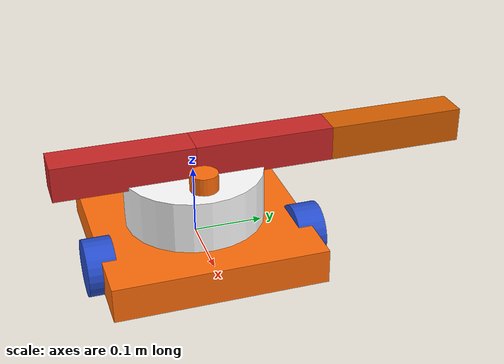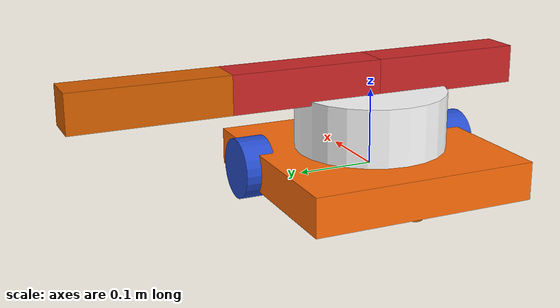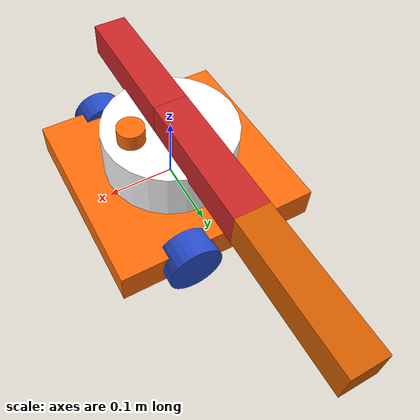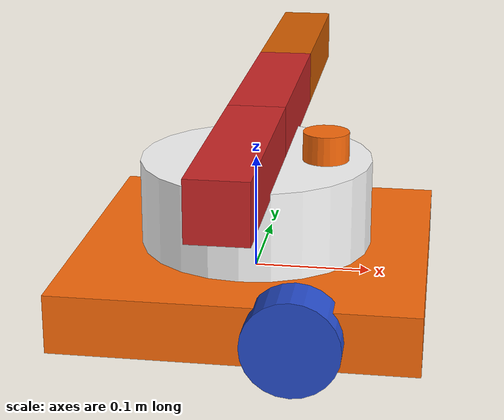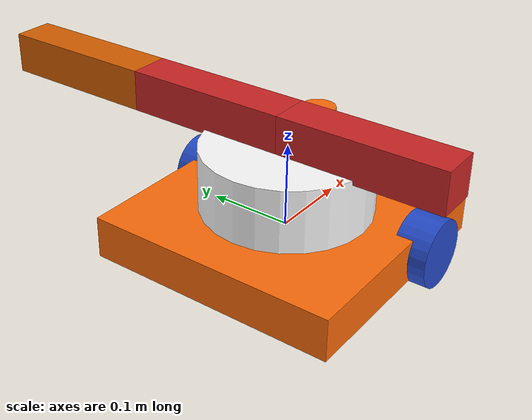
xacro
<?xml version="1.0" encoding="utf-8"?>
<robot name="bw_robo">

  <material name="black">
    <color rgba="1.0 0.423529411765 0.0392156862745 1.0"/>
  </material>
  <material name="blue">
    <color rgba="0.203125 0.23828125 0.28515625 1.0"/>
  </material>
  <material name="green">
    <color rgba="0.203125 0.23828125 0.28515625 1.0"/>
  </material>
  <material name="grey">
    <color rgba="0.2 0.2 0.2 1.0"/>
  </material>
  <material name="orange">
    <color rgba="1.0 0.423529411765 0.0392156862745 1.0"/>
  </material>
  <material name="brown">
    <color rgba="0.870588235294 0.811764705882 0.764705882353 1.0"/>
  </material>
  <material name="red">
    <color rgba="0.80078125 0.12890625 0.1328125 1.0"/>
  </material>
  <material name="white">
    <color rgba="1.0 1.0 1.0 1.0"/>
  </material>

  <gazebo reference="link_chassis">
    <material>Gazebo/Orange</material>
  </gazebo>
  <gazebo reference="link_left_wheel">
    <material>Gazebo/Blue</material>
  </gazebo>
  <gazebo reference="link_right_wheel">
    <material>Gazebo/Blue</material>
  </gazebo>
  <gazebo reference="beltwagon">
    <material>Gazebo/white</material>
  </gazebo>
  <gazebo reference="rear_boom">
    <material>Gazebo/red</material>
  </gazebo>
  <gazebo reference="front_boom">
    <material>Gazebo/red</material>
  </gazebo>
  <gazebo reference="sensor_laser">
    <material>Gazebo/blue</material>
  </gazebo>

  <!-- making real laser scanner in gazebo-->
  <gazebo reference="sensor_laser">
    <sensor type="ray" name="head_hokuyo_sensor">
      <pose>0 0 0 0 0 0</pose>
      <visualize>false</visualize>
      <update_rate>20</update_rate>
      <ray>
        <scan>
          <horizontal>
            <samples>720</samples>
            <resolution>1</resolution>
            <min_angle>-1.570796</min_angle>
            <max_angle>1.570796</max_angle>
          </horizontal>
        </scan>
        <range>
          <min>0.10</min>
          <max>10.0</max>
          <resolution>0.01</resolution>
        </range>
        <noise>
          <type>gaussian</type>
          <mean>0.0</mean>
          <stddev>0.01</stddev>
        </noise>
      </ray>
      <plugin name="gazebo_ros_head_hokuyo_controller" filename="libgazebo_ros_laser.so">
        <topicName>/bw_robo_laser_scan</topicName>
        <frameName>sensor_laser</frameName>
      </plugin>
    </sensor>
  </gazebo>

  <gazebo>
    <plugin filename="libgazebo_ros_diff_drive.so" name="differential_drive_controller">
      <legacyMode>false</legacyMode>
      <alwaysOn>true</alwaysOn>
      <updateRate>30</updateRate>
      <leftJoint>joint_left_wheel</leftJoint>
      <rightJoint>joint_right_wheel</rightJoint>
      <wheelSeparation>0.2</wheelSeparation>
      <wheelDiameter>0.2</wheelDiameter>
      <torque>0.1</torque>
      <commandTopic>cmd_vel</commandTopic>
      <odometryTopic>odom</odometryTopic>
      <odometryFrame>odom</odometryFrame>
      <robotBaseFrame>link_chassis</robotBaseFrame>
    </plugin>

    <plugin name="p3d_base_controller" filename="libgazebo_ros_p3d.so">
      <alwaysOn>true</alwaysOn>
      <updateRate>100.0</updateRate>
      <bodyName>link_chassis</bodyName>
      <topicName>/map</topicName>
      <gaussianNoise>0</gaussianNoise>
      <frameName>/map</frameName>
      <xyzOffsets>0 0 0</xyzOffsets>
      <rpyOffsets>0 0 0</rpyOffsets>
    </plugin>
  </gazebo>

  <link name="link_chassis"> <!-- consider as a base_link -->
    <!-- pose and inertial -->
    <pose>0 0 0.1 0 0 0</pose>
    <inertial>
      <mass value="50"/>
      <origin rpy="0 0 0" xyz="0 0 0.1"/>
      <inertia ixx="68.7083333333333" ixy="0" ixz="0" iyy="104.166666666666" iyz="0" 		 	        izz="39.541666666666"/>
    </inertial>
    <!-- body -->
    <collision name="collision_chassis">
      <geometry>
        <box size="0.3 0.3 0.05"/>
      </geometry>
    </collision>
    <visual>
      <origin rpy="0 0 0" xyz="0 0 0"/>
      <geometry>
        <box size="0.3 0.3 0.05"/>
      </geometry>
      <material name="orange"/>
    </visual>

    <!-- caster front -->     <!-- passive joint-->

    <!-- caster back -->     <!-- passive joint-->
   <inertial>
      <mass value="1"/>
      <origin rpy=" 0 0 0" xyz="-0.15 0 -0.025"/>
      <inertia ixx="0.009" ixy="0" ixz="0" iyy="0.009" iyz="0" 		 	        		izz="0.009"/>
    </inertial>
    <collision name="caster_back_collision">
      <origin rpy=" 0 0 0" xyz="-0.12 0 -0.025"/>
       <geometry>
        <sphere radius="0.015"/>
      </geometry>
      <surface>
        <friction>
          <ode>
            <mu>0</mu>
            <mu2>0</mu2>
            <slip1>1.0</slip1>
            <slip2>1.0</slip2>
          </ode>
        </friction>
      </surface>
    </collision>
    <visual name="caster_front_visual">
      <origin rpy=" 0 0 0" xyz="-0.12 0 -0.025"/>
      <geometry>
        <sphere radius="0.015"/>
      </geometry>
    </visual>
  </link>

    <!-- right_wheel -->
  <link name="link_right_wheel">
    <inertial>
       <mass value="2"/>
       <origin rpy="0 1.5707 1.5707" xyz="0 0 0"/>
       <inertia ixx="0.1066666666" ixy="0" ixz="0" iyy="0.1066666666" iyz="0" 			   izz="0.16"/>
    </inertial>
    <collision name="link_right_wheel_collision">
      <origin rpy="0 1.5707 1.5707" xyz="0 0 0"/>
      <geometry>
        <cylinder length="0.04" radius="0.04"/>
      </geometry>
    </collision>
    <visual>
      <origin rpy="0 1.5707 1.5707" xyz="0 0 0"/>
      <geometry>
       <cylinder length="0.04" radius="0.04"/>
      </geometry>
    </visual>
  </link>

  <joint name="joint_right_wheel" type="continuous">
     <origin rpy="0 0 0" xyz="0.05 0.15 0"/>
     <child link="link_right_wheel"/>
     <parent link="link_chassis"/>
     <axis rpy="0 0 0" xyz="0 1 0"/>
     <limit effort="10" velocity="1000"/>
     <joint_properties damping="0.0" friction="0.0"/>
  </joint>

   <!-- left_wheel -->
  <link name="link_left_wheel">
    <inertial>
       <mass value="2"/>
       <origin rpy="0 1.5707 1.5707" xyz="0 0 0"/>
       <inertia ixx="0.1066666666" ixy="0" ixz="0" iyy="0.1066666666" iyz="0" 			   izz="0.16"/>
    </inertial>
    <collision name="link_left_wheel_collision">
      <origin rpy="0 1.5707 1.5707" xyz="0 0 0"/>
      <geometry>
        <cylinder length="0.04" radius="0.04"/>
      </geometry>
    </collision>
    <visual>
      <origin rpy="0 1.5707 1.5707" xyz="0 0 0"/>
      <geometry>
       <cylinder length="0.04" radius="0.04"/>
      </geometry>
    </visual>
  </link>

  <joint name="joint_left_wheel" type="continuous">
     <origin rpy="0 0 0" xyz="0.05 -0.15 0"/>
     <child link="link_left_wheel"/>
     <parent link="link_chassis"/>
     <axis rpy="0 0 0" xyz="0 1 0"/>
     <limit effort="10" velocity="1000"/>
     <joint_properties damping="0.0" friction="0.0"/>
  </joint>

   <!-- beltwagon -->
  <link name="beltwagon">
   <inertial>
      <mass value="5"/>
      <origin rpy="0 0 0" xyz="0 0 0.06"/>
      <inertia ixx="0.455" ixy="0" ixz="0" iyy="0.455" iyz="0" 		 	        		izz="0.75"/>
    </inertial>
    <collision name="beltwagon">
      <geometry>
        <cylinder length="0.08" radius="0.1"/>
      </geometry>
    </collision>
    <visual>
      <origin rpy="0 0 0" xyz="0 0 0"/>
      <geometry>
        <cylinder length="0.08" radius="0.1"/>
      </geometry>
      <material name="white"/>
    </visual>
  </link>

  <joint name="chassis_to_beltwagon" type="fixed">
     <origin rpy="0 0 0" xyz="0 0 0.06"/>
     <child link="beltwagon"/>
     <parent link="link_chassis"/>
     <axis rpy="0 0 0" xyz="0 0 1"/>
     <limit effort="10" lower="-1.5" upper="1.5" velocity="10"/>
  </joint>

   <!-- rear_boom -->
  <link name="rear_boom">
    <inertial>
     <mass value="2"/>
     <origin rpy="0 0 0" xyz="0 -0.1 0.09"/> <!-- centre of mass-->
     <inertia ixx="0.00708333333" ixy="0" ixz="0" iyy="0.00708333333" iyz="0" 		 	        izz="8.333333333e-4"/>
    </inertial>
    <collision name="rear_boom">
      <geometry>
        <box size="0.05 0.2 0.05"/>
      </geometry>
    </collision>
    <visual>
      <origin rpy="0 0 0" xyz="0 0.1 0"/> <!-- tf axis-->
      <geometry>
        <box size="0.05 0.2 0.05"/>
      </geometry>
     </visual>
  </link>

  <joint name="beltwagon_to_rear_boom" type="revolute">
     <origin rpy="0 0 0" xyz="0 0 0.06"/> <!-- joint placed between two links-->
     <child link="rear_boom"/>
     <parent link="beltwagon"/>
     <axis rpy="0 0 0" xyz="1 0 0"/> <!-- rotation around x axis -->
     <limit effort="1000" lower="-0.25" upper="0.25" velocity="1000"/>
  </joint>

  <!-- end_effector -->
  <link name="end_eff">
    <inertial>
     <mass value="0"/>
     <origin rpy="0 0 0" xyz="0 0 0.1"/>
     <inertia ixx="0" ixy="0" ixz="0" iyy="0" iyz="0" izz="0"/>
    </inertial>
    <collision name="end_eff">
      <geometry>
        <box size="0.05 0.2 0.05"/>
      </geometry>
    </collision>
    <visual>
      <origin rpy="0 0 0" xyz="0 -0.1 0"/>
      <geometry>
        <box size="0.05 0.2 0.05"/>
      </geometry>
    </visual>
  </link>

  <joint name="rear_boom_to_end_eff" type="fixed">
     <origin rpy="0 0 0" xyz="0 0.4 0"/>
     <child link="end_eff"/>
     <parent link="rear_boom"/>
  </joint>

   <!-- front_boom -->
  <link name="front_boom">
    <inertial>
     <mass value="2"/>
     <origin rpy="0 0 0" xyz="0 0.1 0.09"/>
     <inertia ixx="0.00708333333" ixy="0" ixz="0" iyy="0.00708333333" iyz="0" 		 	        izz="8.333333333e-4"/>
    </inertial>
    <collision name="front_boom">
      <geometry>
        <box size="0.05 0.2 0.05"/>
      </geometry>
    </collision>
    <visual>
      <origin rpy="0 0 0" xyz="0 -0.1 0"/>
      <geometry>
        <box size="0.05 0.2 0.05"/>
      </geometry>
    </visual>
  </link>

  <joint name="beltwagon_to_front_boom" type="revolute">
     <origin rpy="0 0 0" xyz="0 0 0.06"/>
     <child link="front_boom"/>
     <parent link="beltwagon"/>
     <axis rpy="0 0 0" xyz="1 0 0"/>
     <limit effort="100" lower="-0.25" upper="0.25" velocity="1000"/>
  </joint>

  <!-- add laser sensor -->
  <link name="sensor_laser">
    <inertial>
        <origin xyz="0 0 0" rpy="0 0 0" />
        <mass value="1" />
        <inertia  ixx="0.001458333" ixy = "0" ixz = "0"
                  iyy="0.001458333" iyz = "0"
                  izz="0.00125" />
    </inertial>

    <visual>
        <origin xyz="0 0 0" rpy="0 0 0" />
        <geometry>
        <cylinder radius="0.02" length="0.03"/>
        </geometry>
        <material name="black" />
    </visual>

    <collision>
        <origin xyz="0 0 0" rpy="0 0 0"/>
        <geometry>
        <cylinder radius="0.02" length="0.03"/>
        </geometry>
    </collision>
  </link>

  <joint name="joint_sensor_laser" type="fixed">
    <origin rpy="0 0 0" xyz="0.06 0 0.05"/>
    <parent link="beltwagon"/>
    <child link="sensor_laser"/>
  </joint>

  <!--                GAZEBO RELATED PART                             -->

  <!-- ROS Control plugin for Gazebo -->

    <gazebo>
        <plugin name="gazebo_ros_control" filename="libgazebo_ros_control.so">
            <robotNamespace>/bw_robo</robotNamespace>
      	    <legacyModeNS>true</legacyModeNS>
        </plugin>
    </gazebo>

</robot>
